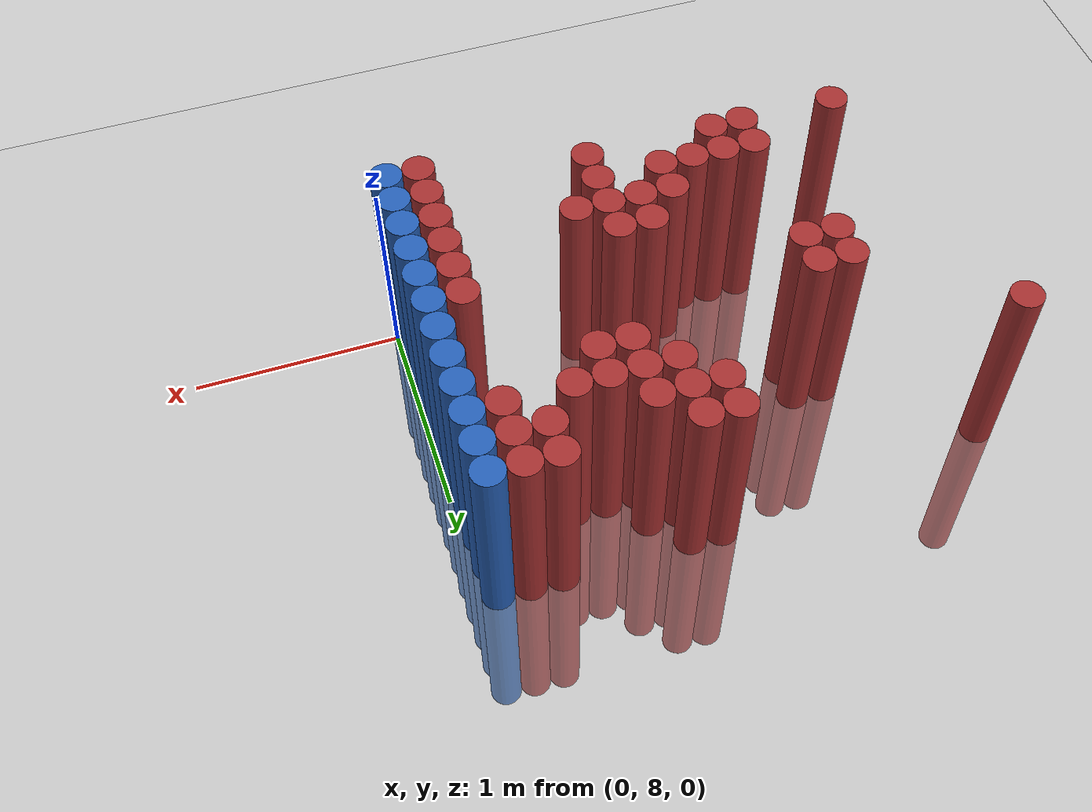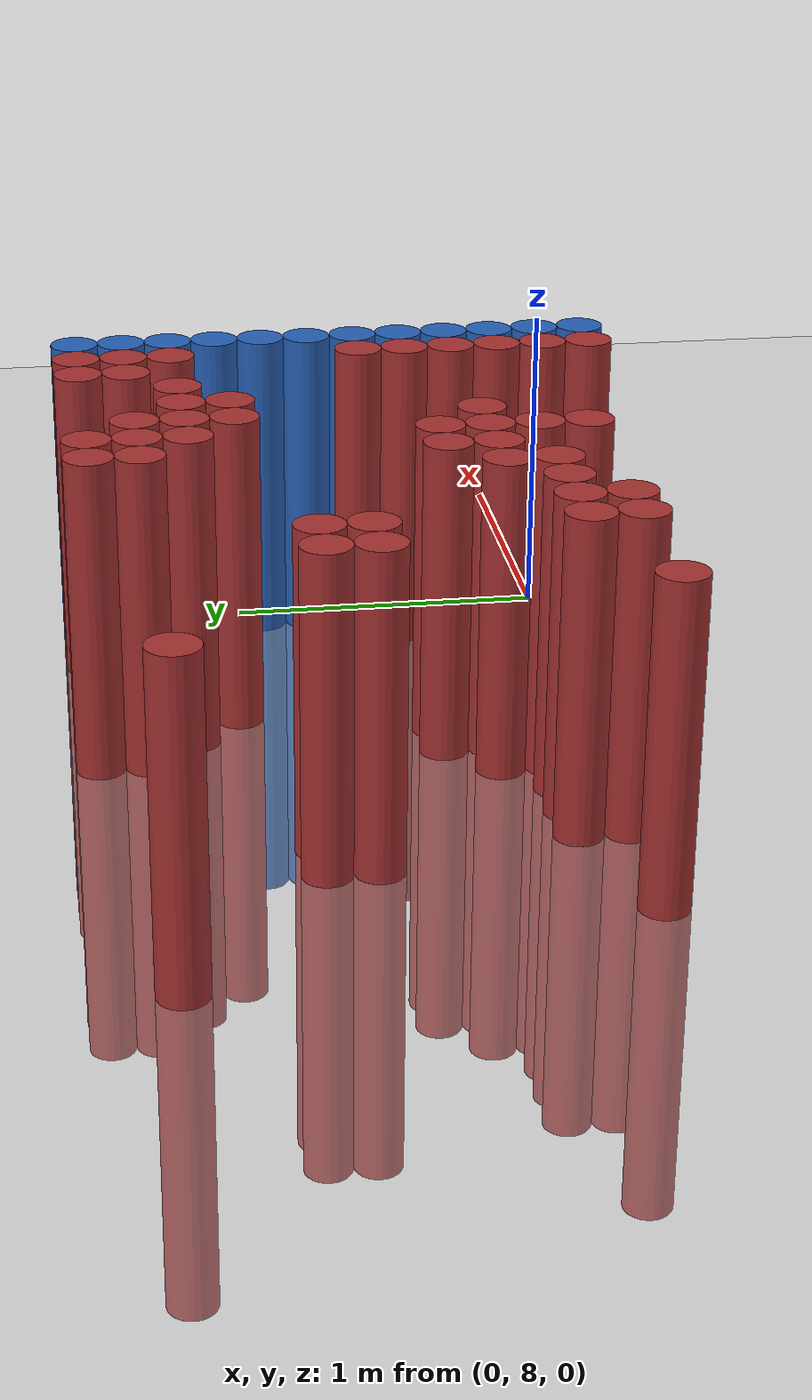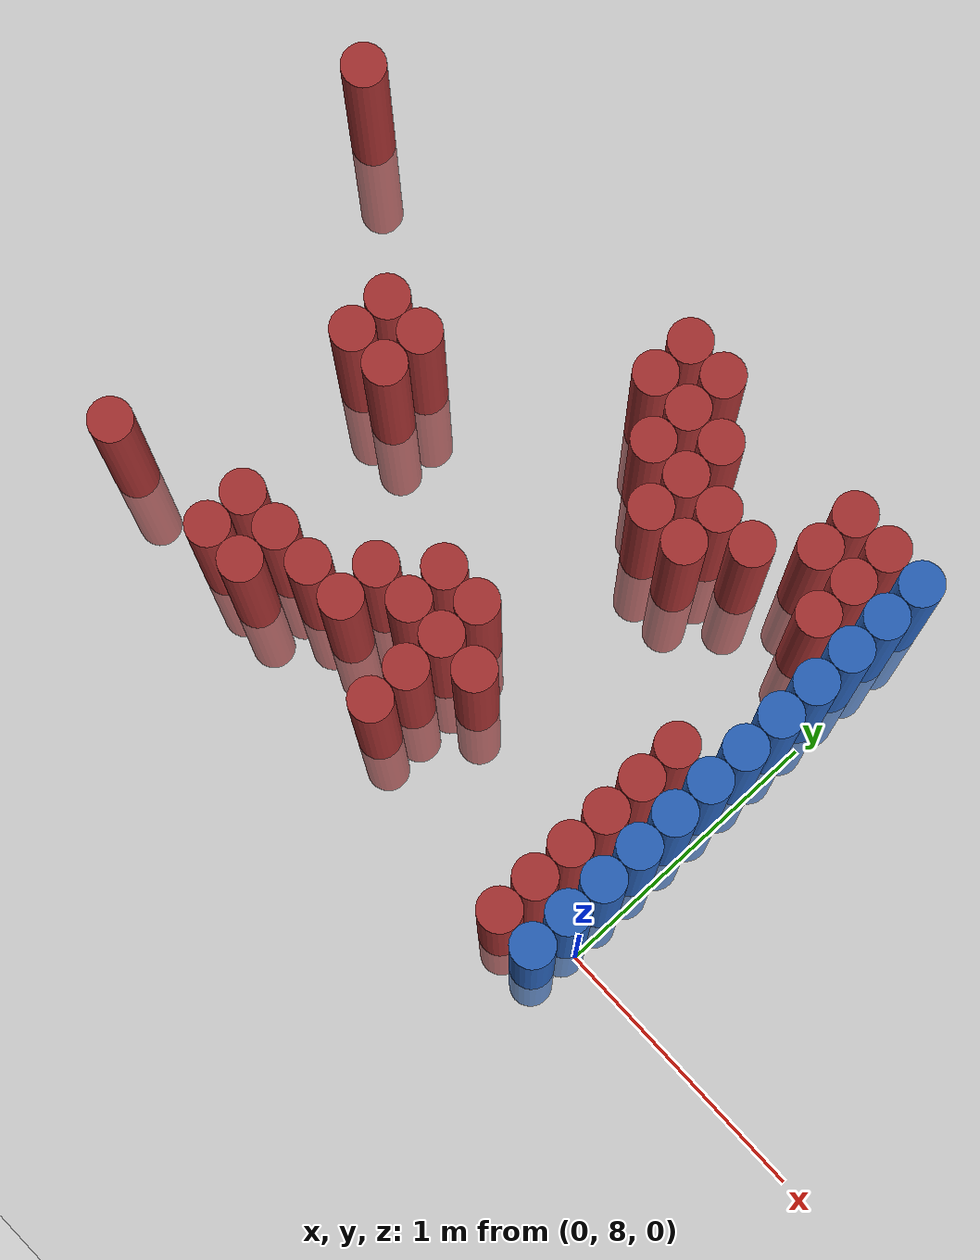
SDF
<sdf version="1.6">
 <world name="default">
  <model name="ground_plane">
   <static>1</static>
   <link name="link">
    <collision name="collision">
     <geometry><plane><normal>0 0 1</normal><size>100 100</size></plane></geometry>
     <surface><friction><ode><mu>100</mu><mu2>50</mu2></ode></friction></surface>
    </collision>
    <visual name="visual">
     <cast_shadows>0</cast_shadows>
     <geometry><plane><normal>0 0 1</normal><size>100 100</size></plane></geometry>
     <material>
      <script><uri>file://media/materials/scripts/gazebo.material</uri><name>Gazebo/Grey</name></script>
     </material>
    </visual>
   </link>
  </model>
  <model name="unit_cylinder_177">
   <static>1</static>
   <pose>-2.475000 9.375000 0.000000 0.000000 0.000000 0.000000</pose>
   <link name="link">
    <inertial>
     <mass>1</mass>
     <inertia><ixx>0.145833</ixx><ixy>0</ixy><ixz>0</ixz><iyy>0.145833</iyy><iyz>0</iyz><izz>0.125</izz></inertia>
    </inertial>
    <collision name="collision">
     <geometry><cylinder><radius>0.075000</radius><length>2</length></cylinder></geometry>
    </collision>
    <visual name="visual">
     <geometry><cylinder><radius>0.075000</radius><length>2</length></cylinder></geometry>
     <material>
      <ambient>0.648000 0.192000 0.192000 1</ambient>
      <diffuse>0.648000 0.192000 0.192000 1</diffuse>
     </material>
     <material>
      <script><name>Gazebo/Grey</name><uri>file://media/materials/scripts/gazebo.material</uri></script>
     </material>
    </visual>
   </link>
  </model>
  <model name="unit_cylinder_188">
   <static>1</static>
   <pose>-2.175000 8.025000 0.000000 0.000000 0.000000 0.000000</pose>
   <link name="link">
    <inertial>
     <mass>1</mass>
     <inertia><ixx>0.145833</ixx><ixy>0</ixy><ixz>0</ixz><iyy>0.145833</iyy><iyz>0</iyz><izz>0.125</izz></inertia>
    </inertial>
    <collision name="collision">
     <geometry><cylinder><radius>0.075000</radius><length>2</length></cylinder></geometry>
    </collision>
    <visual name="visual">
     <geometry><cylinder><radius>0.075000</radius><length>2</length></cylinder></geometry>
     <material>
      <ambient>0.648000 0.192000 0.192000 1</ambient>
      <diffuse>0.648000 0.192000 0.192000 1</diffuse>
     </material>
     <material>
      <script><name>Gazebo/Grey</name><uri>file://media/materials/scripts/gazebo.material</uri></script>
     </material>
    </visual>
   </link>
  </model>
  <model name="unit_cylinder_198">
   <static>1</static>
   <pose>-1.875000 8.775000 0.000000 0.000000 0.000000 0.000000</pose>
   <link name="link">
    <inertial>
     <mass>1</mass>
     <inertia><ixx>0.145833</ixx><ixy>0</ixy><ixz>0</ixz><iyy>0.145833</iyy><iyz>0</iyz><izz>0.125</izz></inertia>
    </inertial>
    <collision name="collision">
     <geometry><cylinder><radius>0.075000</radius><length>2</length></cylinder></geometry>
    </collision>
    <visual name="visual">
     <geometry><cylinder><radius>0.075000</radius><length>2</length></cylinder></geometry>
     <material>
      <ambient>0.648000 0.192000 0.192000 1</ambient>
      <diffuse>0.648000 0.192000 0.192000 1</diffuse>
     </material>
     <material>
      <script><name>Gazebo/Grey</name><uri>file://media/materials/scripts/gazebo.material</uri></script>
     </material>
    </visual>
   </link>
  </model>
  <model name="unit_cylinder_199">
   <static>1</static>
   <pose>-1.875000 8.925000 0.000000 0.000000 0.000000 0.000000</pose>
   <link name="link">
    <inertial>
     <mass>1</mass>
     <inertia><ixx>0.145833</ixx><ixy>0</ixy><ixz>0</ixz><iyy>0.145833</iyy><iyz>0</iyz><izz>0.125</izz></inertia>
    </inertial>
    <collision name="collision">
     <geometry><cylinder><radius>0.075000</radius><length>2</length></cylinder></geometry>
    </collision>
    <visual name="visual">
     <geometry><cylinder><radius>0.075000</radius><length>2</length></cylinder></geometry>
     <material>
      <ambient>0.648000 0.192000 0.192000 1</ambient>
      <diffuse>0.648000 0.192000 0.192000 1</diffuse>
     </material>
     <material>
      <script><name>Gazebo/Grey</name><uri>file://media/materials/scripts/gazebo.material</uri></script>
     </material>
    </visual>
   </link>
  </model>
  <model name="unit_cylinder_208">
   <static>1</static>
   <pose>-1.725000 8.025000 0.000000 0.000000 0.000000 0.000000</pose>
   <link name="link">
    <inertial>
     <mass>1</mass>
     <inertia><ixx>0.145833</ixx><ixy>0</ixy><ixz>0</ixz><iyy>0.145833</iyy><iyz>0</iyz><izz>0.125</izz></inertia>
    </inertial>
    <collision name="collision">
     <geometry><cylinder><radius>0.075000</radius><length>2</length></cylinder></geometry>
    </collision>
    <visual name="visual">
     <geometry><cylinder><radius>0.075000</radius><length>2</length></cylinder></geometry>
     <material>
      <ambient>0.648000 0.192000 0.192000 1</ambient>
      <diffuse>0.648000 0.192000 0.192000 1</diffuse>
     </material>
     <material>
      <script><name>Gazebo/Grey</name><uri>file://media/materials/scripts/gazebo.material</uri></script>
     </material>
    </visual>
   </link>
  </model>
  <model name="unit_cylinder_209">
   <static>1</static>
   <pose>-1.725000 8.175000 0.000000 0.000000 0.000000 0.000000</pose>
   <link name="link">
    <inertial>
     <mass>1</mass>
     <inertia><ixx>0.145833</ixx><ixy>0</ixy><ixz>0</ixz><iyy>0.145833</iyy><iyz>0</iyz><izz>0.125</izz></inertia>
    </inertial>
    <collision name="collision">
     <geometry><cylinder><radius>0.075000</radius><length>2</length></cylinder></geometry>
    </collision>
    <visual name="visual">
     <geometry><cylinder><radius>0.075000</radius><length>2</length></cylinder></geometry>
     <material>
      <ambient>0.648000 0.192000 0.192000 1</ambient>
      <diffuse>0.648000 0.192000 0.192000 1</diffuse>
     </material>
     <material>
      <script><name>Gazebo/Grey</name><uri>file://media/materials/scripts/gazebo.material</uri></script>
     </material>
    </visual>
   </link>
  </model>
  <model name="unit_cylinder_210">
   <static>1</static>
   <pose>-1.725000 8.775000 0.000000 0.000000 0.000000 0.000000</pose>
   <link name="link">
    <inertial>
     <mass>1</mass>
     <inertia><ixx>0.145833</ixx><ixy>0</ixy><ixz>0</ixz><iyy>0.145833</iyy><iyz>0</iyz><izz>0.125</izz></inertia>
    </inertial>
    <collision name="collision">
     <geometry><cylinder><radius>0.075000</radius><length>2</length></cylinder></geometry>
    </collision>
    <visual name="visual">
     <geometry><cylinder><radius>0.075000</radius><length>2</length></cylinder></geometry>
     <material>
      <ambient>0.648000 0.192000 0.192000 1</ambient>
      <diffuse>0.648000 0.192000 0.192000 1</diffuse>
     </material>
     <material>
      <script><name>Gazebo/Grey</name><uri>file://media/materials/scripts/gazebo.material</uri></script>
     </material>
    </visual>
   </link>
  </model>
  <model name="unit_cylinder_211">
   <static>1</static>
   <pose>-1.725000 8.925000 0.000000 0.000000 0.000000 0.000000</pose>
   <link name="link">
    <inertial>
     <mass>1</mass>
     <inertia><ixx>0.145833</ixx><ixy>0</ixy><ixz>0</ixz><iyy>0.145833</iyy><iyz>0</iyz><izz>0.125</izz></inertia>
    </inertial>
    <collision name="collision">
     <geometry><cylinder><radius>0.075000</radius><length>2</length></cylinder></geometry>
    </collision>
    <visual name="visual">
     <geometry><cylinder><radius>0.075000</radius><length>2</length></cylinder></geometry>
     <material>
      <ambient>0.648000 0.192000 0.192000 1</ambient>
      <diffuse>0.648000 0.192000 0.192000 1</diffuse>
     </material>
     <material>
      <script><name>Gazebo/Grey</name><uri>file://media/materials/scripts/gazebo.material</uri></script>
     </material>
    </visual>
   </link>
  </model>
  <model name="unit_cylinder_221">
   <static>1</static>
   <pose>-1.575000 8.025000 0.000000 0.000000 0.000000 0.000000</pose>
   <link name="link">
    <inertial>
     <mass>1</mass>
     <inertia><ixx>0.145833</ixx><ixy>0</ixy><ixz>0</ixz><iyy>0.145833</iyy><iyz>0</iyz><izz>0.125</izz></inertia>
    </inertial>
    <collision name="collision">
     <geometry><cylinder><radius>0.075000</radius><length>2</length></cylinder></geometry>
    </collision>
    <visual name="visual">
     <geometry><cylinder><radius>0.075000</radius><length>2</length></cylinder></geometry>
     <material>
      <ambient>0.648000 0.192000 0.192000 1</ambient>
      <diffuse>0.648000 0.192000 0.192000 1</diffuse>
     </material>
     <material>
      <script><name>Gazebo/Grey</name><uri>file://media/materials/scripts/gazebo.material</uri></script>
     </material>
    </visual>
   </link>
  </model>
  <model name="unit_cylinder_222">
   <static>1</static>
   <pose>-1.575000 8.175000 0.000000 0.000000 0.000000 0.000000</pose>
   <link name="link">
    <inertial>
     <mass>1</mass>
     <inertia><ixx>0.145833</ixx><ixy>0</ixy><ixz>0</ixz><iyy>0.145833</iyy><iyz>0</iyz><izz>0.125</izz></inertia>
    </inertial>
    <collision name="collision">
     <geometry><cylinder><radius>0.075000</radius><length>2</length></cylinder></geometry>
    </collision>
    <visual name="visual">
     <geometry><cylinder><radius>0.075000</radius><length>2</length></cylinder></geometry>
     <material>
      <ambient>0.648000 0.192000 0.192000 1</ambient>
      <diffuse>0.648000 0.192000 0.192000 1</diffuse>
     </material>
     <material>
      <script><name>Gazebo/Grey</name><uri>file://media/materials/scripts/gazebo.material</uri></script>
     </material>
    </visual>
   </link>
  </model>
  <model name="unit_cylinder_227">
   <static>1</static>
   <pose>-1.425000 8.175000 0.000000 0.000000 0.000000 0.000000</pose>
   <link name="link">
    <inertial>
     <mass>1</mass>
     <inertia><ixx>0.145833</ixx><ixy>0</ixy><ixz>0</ixz><iyy>0.145833</iyy><iyz>0</iyz><izz>0.125</izz></inertia>
    </inertial>
    <collision name="collision">
     <geometry><cylinder><radius>0.075000</radius><length>2</length></cylinder></geometry>
    </collision>
    <visual name="visual">
     <geometry><cylinder><radius>0.075000</radius><length>2</length></cylinder></geometry>
     <material>
      <ambient>0.648000 0.192000 0.192000 1</ambient>
      <diffuse>0.648000 0.192000 0.192000 1</diffuse>
     </material>
     <material>
      <script><name>Gazebo/Grey</name><uri>file://media/materials/scripts/gazebo.material</uri></script>
     </material>
    </visual>
   </link>
  </model>
  <model name="unit_cylinder_231">
   <static>1</static>
   <pose>-1.275000 8.175000 0.000000 0.000000 0.000000 0.000000</pose>
   <link name="link">
    <inertial>
     <mass>1</mass>
     <inertia><ixx>0.145833</ixx><ixy>0</ixy><ixz>0</ixz><iyy>0.145833</iyy><iyz>0</iyz><izz>0.125</izz></inertia>
    </inertial>
    <collision name="collision">
     <geometry><cylinder><radius>0.075000</radius><length>2</length></cylinder></geometry>
    </collision>
    <visual name="visual">
     <geometry><cylinder><radius>0.075000</radius><length>2</length></cylinder></geometry>
     <material>
      <ambient>0.648000 0.192000 0.192000 1</ambient>
      <diffuse>0.648000 0.192000 0.192000 1</diffuse>
     </material>
     <material>
      <script><name>Gazebo/Grey</name><uri>file://media/materials/scripts/gazebo.material</uri></script>
     </material>
    </visual>
   </link>
  </model>
  <model name="unit_cylinder_232">
   <static>1</static>
   <pose>-1.275000 8.325000 0.000000 0.000000 0.000000 0.000000</pose>
   <link name="link">
    <inertial>
     <mass>1</mass>
     <inertia><ixx>0.145833</ixx><ixy>0</ixy><ixz>0</ixz><iyy>0.145833</iyy><iyz>0</iyz><izz>0.125</izz></inertia>
    </inertial>
    <collision name="collision">
     <geometry><cylinder><radius>0.075000</radius><length>2</length></cylinder></geometry>
    </collision>
    <visual name="visual">
     <geometry><cylinder><radius>0.075000</radius><length>2</length></cylinder></geometry>
     <material>
      <ambient>0.648000 0.192000 0.192000 1</ambient>
      <diffuse>0.648000 0.192000 0.192000 1</diffuse>
     </material>
     <material>
      <script><name>Gazebo/Grey</name><uri>file://media/materials/scripts/gazebo.material</uri></script>
     </material>
    </visual>
   </link>
  </model>
  <model name="unit_cylinder_238">
   <static>1</static>
   <pose>-1.125000 8.325000 0.000000 0.000000 0.000000 0.000000</pose>
   <link name="link">
    <inertial>
     <mass>1</mass>
     <inertia><ixx>0.145833</ixx><ixy>0</ixy><ixz>0</ixz><iyy>0.145833</iyy><iyz>0</iyz><izz>0.125</izz></inertia>
    </inertial>
    <collision name="collision">
     <geometry><cylinder><radius>0.075000</radius><length>2</length></cylinder></geometry>
    </collision>
    <visual name="visual">
     <geometry><cylinder><radius>0.075000</radius><length>2</length></cylinder></geometry>
     <material>
      <ambient>0.648000 0.192000 0.192000 1</ambient>
      <diffuse>0.648000 0.192000 0.192000 1</diffuse>
     </material>
     <material>
      <script><name>Gazebo/Grey</name><uri>file://media/materials/scripts/gazebo.material</uri></script>
     </material>
    </visual>
   </link>
  </model>
  <model name="unit_cylinder_239">
   <static>1</static>
   <pose>-1.125000 8.475000 0.000000 0.000000 0.000000 0.000000</pose>
   <link name="link">
    <inertial>
     <mass>1</mass>
     <inertia><ixx>0.145833</ixx><ixy>0</ixy><ixz>0</ixz><iyy>0.145833</iyy><iyz>0</iyz><izz>0.125</izz></inertia>
    </inertial>
    <collision name="collision">
     <geometry><cylinder><radius>0.075000</radius><length>2</length></cylinder></geometry>
    </collision>
    <visual name="visual">
     <geometry><cylinder><radius>0.075000</radius><length>2</length></cylinder></geometry>
     <material>
      <ambient>0.648000 0.192000 0.192000 1</ambient>
      <diffuse>0.648000 0.192000 0.192000 1</diffuse>
     </material>
     <material>
      <script><name>Gazebo/Grey</name><uri>file://media/materials/scripts/gazebo.material</uri></script>
     </material>
    </visual>
   </link>
  </model>
  <model name="unit_cylinder_240">
   <static>1</static>
   <pose>-1.125000 9.375000 0.000000 0.000000 0.000000 0.000000</pose>
   <link name="link">
    <inertial>
     <mass>1</mass>
     <inertia><ixx>0.145833</ixx><ixy>0</ixy><ixz>0</ixz><iyy>0.145833</iyy><iyz>0</iyz><izz>0.125</izz></inertia>
    </inertial>
    <collision name="collision">
     <geometry><cylinder><radius>0.075000</radius><length>2</length></cylinder></geometry>
    </collision>
    <visual name="visual">
     <geometry><cylinder><radius>0.075000</radius><length>2</length></cylinder></geometry>
     <material>
      <ambient>0.648000 0.192000 0.192000 1</ambient>
      <diffuse>0.648000 0.192000 0.192000 1</diffuse>
     </material>
     <material>
      <script><name>Gazebo/Grey</name><uri>file://media/materials/scripts/gazebo.material</uri></script>
     </material>
    </visual>
   </link>
  </model>
  <model name="unit_cylinder_241">
   <static>1</static>
   <pose>-1.125000 9.525000 0.000000 0.000000 0.000000 0.000000</pose>
   <link name="link">
    <inertial>
     <mass>1</mass>
     <inertia><ixx>0.145833</ixx><ixy>0</ixy><ixz>0</ixz><iyy>0.145833</iyy><iyz>0</iyz><izz>0.125</izz></inertia>
    </inertial>
    <collision name="collision">
     <geometry><cylinder><radius>0.075000</radius><length>2</length></cylinder></geometry>
    </collision>
    <visual name="visual">
     <geometry><cylinder><radius>0.075000</radius><length>2</length></cylinder></geometry>
     <material>
      <ambient>0.648000 0.192000 0.192000 1</ambient>
      <diffuse>0.648000 0.192000 0.192000 1</diffuse>
     </material>
     <material>
      <script><name>Gazebo/Grey</name><uri>file://media/materials/scripts/gazebo.material</uri></script>
     </material>
    </visual>
   </link>
  </model>
  <model name="unit_cylinder_246">
   <static>1</static>
   <pose>-0.975000 8.025000 0.000000 0.000000 0.000000 0.000000</pose>
   <link name="link">
    <inertial>
     <mass>1</mass>
     <inertia><ixx>0.145833</ixx><ixy>0</ixy><ixz>0</ixz><iyy>0.145833</iyy><iyz>0</iyz><izz>0.125</izz></inertia>
    </inertial>
    <collision name="collision">
     <geometry><cylinder><radius>0.075000</radius><length>2</length></cylinder></geometry>
    </collision>
    <visual name="visual">
     <geometry><cylinder><radius>0.075000</radius><length>2</length></cylinder></geometry>
     <material>
      <ambient>0.648000 0.192000 0.192000 1</ambient>
      <diffuse>0.648000 0.192000 0.192000 1</diffuse>
     </material>
     <material>
      <script><name>Gazebo/Grey</name><uri>file://media/materials/scripts/gazebo.material</uri></script>
     </material>
    </visual>
   </link>
  </model>
  <model name="unit_cylinder_247">
   <static>1</static>
   <pose>-0.975000 8.175000 0.000000 0.000000 0.000000 0.000000</pose>
   <link name="link">
    <inertial>
     <mass>1</mass>
     <inertia><ixx>0.145833</ixx><ixy>0</ixy><ixz>0</ixz><iyy>0.145833</iyy><iyz>0</iyz><izz>0.125</izz></inertia>
    </inertial>
    <collision name="collision">
     <geometry><cylinder><radius>0.075000</radius><length>2</length></cylinder></geometry>
    </collision>
    <visual name="visual">
     <geometry><cylinder><radius>0.075000</radius><length>2</length></cylinder></geometry>
     <material>
      <ambient>0.648000 0.192000 0.192000 1</ambient>
      <diffuse>0.648000 0.192000 0.192000 1</diffuse>
     </material>
     <material>
      <script><name>Gazebo/Grey</name><uri>file://media/materials/scripts/gazebo.material</uri></script>
     </material>
    </visual>
   </link>
  </model>
  <model name="unit_cylinder_248">
   <static>1</static>
   <pose>-0.975000 8.325000 0.000000 0.000000 0.000000 0.000000</pose>
   <link name="link">
    <inertial>
     <mass>1</mass>
     <inertia><ixx>0.145833</ixx><ixy>0</ixy><ixz>0</ixz><iyy>0.145833</iyy><iyz>0</iyz><izz>0.125</izz></inertia>
    </inertial>
    <collision name="collision">
     <geometry><cylinder><radius>0.075000</radius><length>2</length></cylinder></geometry>
    </collision>
    <visual name="visual">
     <geometry><cylinder><radius>0.075000</radius><length>2</length></cylinder></geometry>
     <material>
      <ambient>0.648000 0.192000 0.192000 1</ambient>
      <diffuse>0.648000 0.192000 0.192000 1</diffuse>
     </material>
     <material>
      <script><name>Gazebo/Grey</name><uri>file://media/materials/scripts/gazebo.material</uri></script>
     </material>
    </visual>
   </link>
  </model>
  <model name="unit_cylinder_249">
   <static>1</static>
   <pose>-0.975000 8.475000 0.000000 0.000000 0.000000 0.000000</pose>
   <link name="link">
    <inertial>
     <mass>1</mass>
     <inertia><ixx>0.145833</ixx><ixy>0</ixy><ixz>0</ixz><iyy>0.145833</iyy><iyz>0</iyz><izz>0.125</izz></inertia>
    </inertial>
    <collision name="collision">
     <geometry><cylinder><radius>0.075000</radius><length>2</length></cylinder></geometry>
    </collision>
    <visual name="visual">
     <geometry><cylinder><radius>0.075000</radius><length>2</length></cylinder></geometry>
     <material>
      <ambient>0.648000 0.192000 0.192000 1</ambient>
      <diffuse>0.648000 0.192000 0.192000 1</diffuse>
     </material>
     <material>
      <script><name>Gazebo/Grey</name><uri>file://media/materials/scripts/gazebo.material</uri></script>
     </material>
    </visual>
   </link>
  </model>
  <model name="unit_cylinder_250">
   <static>1</static>
   <pose>-0.975000 9.225000 0.000000 0.000000 0.000000 0.000000</pose>
   <link name="link">
    <inertial>
     <mass>1</mass>
     <inertia><ixx>0.145833</ixx><ixy>0</ixy><ixz>0</ixz><iyy>0.145833</iyy><iyz>0</iyz><izz>0.125</izz></inertia>
    </inertial>
    <collision name="collision">
     <geometry><cylinder><radius>0.075000</radius><length>2</length></cylinder></geometry>
    </collision>
    <visual name="visual">
     <geometry><cylinder><radius>0.075000</radius><length>2</length></cylinder></geometry>
     <material>
      <ambient>0.648000 0.192000 0.192000 1</ambient>
      <diffuse>0.648000 0.192000 0.192000 1</diffuse>
     </material>
     <material>
      <script><name>Gazebo/Grey</name><uri>file://media/materials/scripts/gazebo.material</uri></script>
     </material>
    </visual>
   </link>
  </model>
  <model name="unit_cylinder_251">
   <static>1</static>
   <pose>-0.975000 9.375000 0.000000 0.000000 0.000000 0.000000</pose>
   <link name="link">
    <inertial>
     <mass>1</mass>
     <inertia><ixx>0.145833</ixx><ixy>0</ixy><ixz>0</ixz><iyy>0.145833</iyy><iyz>0</iyz><izz>0.125</izz></inertia>
    </inertial>
    <collision name="collision">
     <geometry><cylinder><radius>0.075000</radius><length>2</length></cylinder></geometry>
    </collision>
    <visual name="visual">
     <geometry><cylinder><radius>0.075000</radius><length>2</length></cylinder></geometry>
     <material>
      <ambient>0.648000 0.192000 0.192000 1</ambient>
      <diffuse>0.648000 0.192000 0.192000 1</diffuse>
     </material>
     <material>
      <script><name>Gazebo/Grey</name><uri>file://media/materials/scripts/gazebo.material</uri></script>
     </material>
    </visual>
   </link>
  </model>
  <model name="unit_cylinder_252">
   <static>1</static>
   <pose>-0.975000 9.525000 0.000000 0.000000 0.000000 0.000000</pose>
   <link name="link">
    <inertial>
     <mass>1</mass>
     <inertia><ixx>0.145833</ixx><ixy>0</ixy><ixz>0</ixz><iyy>0.145833</iyy><iyz>0</iyz><izz>0.125</izz></inertia>
    </inertial>
    <collision name="collision">
     <geometry><cylinder><radius>0.075000</radius><length>2</length></cylinder></geometry>
    </collision>
    <visual name="visual">
     <geometry><cylinder><radius>0.075000</radius><length>2</length></cylinder></geometry>
     <material>
      <ambient>0.648000 0.192000 0.192000 1</ambient>
      <diffuse>0.648000 0.192000 0.192000 1</diffuse>
     </material>
     <material>
      <script><name>Gazebo/Grey</name><uri>file://media/materials/scripts/gazebo.material</uri></script>
     </material>
    </visual>
   </link>
  </model>
  <model name="unit_cylinder_256">
   <static>1</static>
   <pose>-0.825000 8.325000 0.000000 0.000000 0.000000 0.000000</pose>
   <link name="link">
    <inertial>
     <mass>1</mass>
     <inertia><ixx>0.145833</ixx><ixy>0</ixy><ixz>0</ixz><iyy>0.145833</iyy><iyz>0</iyz><izz>0.125</izz></inertia>
    </inertial>
    <collision name="collision">
     <geometry><cylinder><radius>0.075000</radius><length>2</length></cylinder></geometry>
    </collision>
    <visual name="visual">
     <geometry><cylinder><radius>0.075000</radius><length>2</length></cylinder></geometry>
     <material>
      <ambient>0.648000 0.192000 0.192000 1</ambient>
      <diffuse>0.648000 0.192000 0.192000 1</diffuse>
     </material>
     <material>
      <script><name>Gazebo/Grey</name><uri>file://media/materials/scripts/gazebo.material</uri></script>
     </material>
    </visual>
   </link>
  </model>
  <model name="unit_cylinder_257">
   <static>1</static>
   <pose>-0.825000 9.075000 0.000000 0.000000 0.000000 0.000000</pose>
   <link name="link">
    <inertial>
     <mass>1</mass>
     <inertia><ixx>0.145833</ixx><ixy>0</ixy><ixz>0</ixz><iyy>0.145833</iyy><iyz>0</iyz><izz>0.125</izz></inertia>
    </inertial>
    <collision name="collision">
     <geometry><cylinder><radius>0.075000</radius><length>2</length></cylinder></geometry>
    </collision>
    <visual name="visual">
     <geometry><cylinder><radius>0.075000</radius><length>2</length></cylinder></geometry>
     <material>
      <ambient>0.648000 0.192000 0.192000 1</ambient>
      <diffuse>0.648000 0.192000 0.192000 1</diffuse>
     </material>
     <material>
      <script><name>Gazebo/Grey</name><uri>file://media/materials/scripts/gazebo.material</uri></script>
     </material>
    </visual>
   </link>
  </model>
  <model name="unit_cylinder_258">
   <static>1</static>
   <pose>-0.825000 9.225000 0.000000 0.000000 0.000000 0.000000</pose>
   <link name="link">
    <inertial>
     <mass>1</mass>
     <inertia><ixx>0.145833</ixx><ixy>0</ixy><ixz>0</ixz><iyy>0.145833</iyy><iyz>0</iyz><izz>0.125</izz></inertia>
    </inertial>
    <collision name="collision">
     <geometry><cylinder><radius>0.075000</radius><length>2</length></cylinder></geometry>
    </collision>
    <visual name="visual">
     <geometry><cylinder><radius>0.075000</radius><length>2</length></cylinder></geometry>
     <material>
      <ambient>0.648000 0.192000 0.192000 1</ambient>
      <diffuse>0.648000 0.192000 0.192000 1</diffuse>
     </material>
     <material>
      <script><name>Gazebo/Grey</name><uri>file://media/materials/scripts/gazebo.material</uri></script>
     </material>
    </visual>
   </link>
  </model>
  <model name="unit_cylinder_259">
   <static>1</static>
   <pose>-0.825000 9.375000 0.000000 0.000000 0.000000 0.000000</pose>
   <link name="link">
    <inertial>
     <mass>1</mass>
     <inertia><ixx>0.145833</ixx><ixy>0</ixy><ixz>0</ixz><iyy>0.145833</iyy><iyz>0</iyz><izz>0.125</izz></inertia>
    </inertial>
    <collision name="collision">
     <geometry><cylinder><radius>0.075000</radius><length>2</length></cylinder></geometry>
    </collision>
    <visual name="visual">
     <geometry><cylinder><radius>0.075000</radius><length>2</length></cylinder></geometry>
     <material>
      <ambient>0.648000 0.192000 0.192000 1</ambient>
      <diffuse>0.648000 0.192000 0.192000 1</diffuse>
     </material>
     <material>
      <script><name>Gazebo/Grey</name><uri>file://media/materials/scripts/gazebo.material</uri></script>
     </material>
    </visual>
   </link>
  </model>
  <model name="unit_cylinder_263">
   <static>1</static>
   <pose>-0.675000 9.075000 0.000000 0.000000 0.000000 0.000000</pose>
   <link name="link">
    <inertial>
     <mass>1</mass>
     <inertia><ixx>0.145833</ixx><ixy>0</ixy><ixz>0</ixz><iyy>0.145833</iyy><iyz>0</iyz><izz>0.125</izz></inertia>
    </inertial>
    <collision name="collision">
     <geometry><cylinder><radius>0.075000</radius><length>2</length></cylinder></geometry>
    </collision>
    <visual name="visual">
     <geometry><cylinder><radius>0.075000</radius><length>2</length></cylinder></geometry>
     <material>
      <ambient>0.648000 0.192000 0.192000 1</ambient>
      <diffuse>0.648000 0.192000 0.192000 1</diffuse>
     </material>
     <material>
      <script><name>Gazebo/Grey</name><uri>file://media/materials/scripts/gazebo.material</uri></script>
     </material>
    </visual>
   </link>
  </model>
  <model name="unit_cylinder_264">
   <static>1</static>
   <pose>-0.675000 9.225000 0.000000 0.000000 0.000000 0.000000</pose>
   <link name="link">
    <inertial>
     <mass>1</mass>
     <inertia><ixx>0.145833</ixx><ixy>0</ixy><ixz>0</ixz><iyy>0.145833</iyy><iyz>0</iyz><izz>0.125</izz></inertia>
    </inertial>
    <collision name="collision">
     <geometry><cylinder><radius>0.075000</radius><length>2</length></cylinder></geometry>
    </collision>
    <visual name="visual">
     <geometry><cylinder><radius>0.075000</radius><length>2</length></cylinder></geometry>
     <material>
      <ambient>0.648000 0.192000 0.192000 1</ambient>
      <diffuse>0.648000 0.192000 0.192000 1</diffuse>
     </material>
     <material>
      <script><name>Gazebo/Grey</name><uri>file://media/materials/scripts/gazebo.material</uri></script>
     </material>
    </visual>
   </link>
  </model>
  <model name="unit_cylinder_268">
   <static>1</static>
   <pose>-0.525000 9.225000 0.000000 0.000000 0.000000 0.000000</pose>
   <link name="link">
    <inertial>
     <mass>1</mass>
     <inertia><ixx>0.145833</ixx><ixy>0</ixy><ixz>0</ixz><iyy>0.145833</iyy><iyz>0</iyz><izz>0.125</izz></inertia>
    </inertial>
    <collision name="collision">
     <geometry><cylinder><radius>0.075000</radius><length>2</length></cylinder></geometry>
    </collision>
    <visual name="visual">
     <geometry><cylinder><radius>0.075000</radius><length>2</length></cylinder></geometry>
     <material>
      <ambient>0.648000 0.192000 0.192000 1</ambient>
      <diffuse>0.648000 0.192000 0.192000 1</diffuse>
     </material>
     <material>
      <script><name>Gazebo/Grey</name><uri>file://media/materials/scripts/gazebo.material</uri></script>
     </material>
    </visual>
   </link>
  </model>
  <model name="unit_cylinder_275">
   <static>1</static>
   <pose>-0.375000 9.375000 0.000000 0.000000 0.000000 0.000000</pose>
   <link name="link">
    <inertial>
     <mass>1</mass>
     <inertia><ixx>0.145833</ixx><ixy>0</ixy><ixz>0</ixz><iyy>0.145833</iyy><iyz>0</iyz><izz>0.125</izz></inertia>
    </inertial>
    <collision name="collision">
     <geometry><cylinder><radius>0.075000</radius><length>2</length></cylinder></geometry>
    </collision>
    <visual name="visual">
     <geometry><cylinder><radius>0.075000</radius><length>2</length></cylinder></geometry>
     <material>
      <ambient>0.648000 0.192000 0.192000 1</ambient>
      <diffuse>0.648000 0.192000 0.192000 1</diffuse>
     </material>
     <material>
      <script><name>Gazebo/Grey</name><uri>file://media/materials/scripts/gazebo.material</uri></script>
     </material>
    </visual>
   </link>
  </model>
  <model name="unit_cylinder_276">
   <static>1</static>
   <pose>-0.375000 9.525000 0.000000 0.000000 0.000000 0.000000</pose>
   <link name="link">
    <inertial>
     <mass>1</mass>
     <inertia><ixx>0.145833</ixx><ixy>0</ixy><ixz>0</ixz><iyy>0.145833</iyy><iyz>0</iyz><izz>0.125</izz></inertia>
    </inertial>
    <collision name="collision">
     <geometry><cylinder><radius>0.075000</radius><length>2</length></cylinder></geometry>
    </collision>
    <visual name="visual">
     <geometry><cylinder><radius>0.075000</radius><length>2</length></cylinder></geometry>
     <material>
      <ambient>0.648000 0.192000 0.192000 1</ambient>
      <diffuse>0.648000 0.192000 0.192000 1</diffuse>
     </material>
     <material>
      <script><name>Gazebo/Grey</name><uri>file://media/materials/scripts/gazebo.material</uri></script>
     </material>
    </visual>
   </link>
  </model>
  <model name="unit_cylinder_286">
   <static>1</static>
   <pose>-0.225000 7.875000 0.000000 0.000000 0.000000 0.000000</pose>
   <link name="link">
    <inertial>
     <mass>1</mass>
     <inertia><ixx>0.145833</ixx><ixy>0</ixy><ixz>0</ixz><iyy>0.145833</iyy><iyz>0</iyz><izz>0.125</izz></inertia>
    </inertial>
    <collision name="collision">
     <geometry><cylinder><radius>0.075000</radius><length>2</length></cylinder></geometry>
    </collision>
    <visual name="visual">
     <geometry><cylinder><radius>0.075000</radius><length>2</length></cylinder></geometry>
     <material>
      <ambient>0.648000 0.192000 0.192000 1</ambient>
      <diffuse>0.648000 0.192000 0.192000 1</diffuse>
     </material>
     <material>
      <script><name>Gazebo/Grey</name><uri>file://media/materials/scripts/gazebo.material</uri></script>
     </material>
    </visual>
   </link>
  </model>
  <model name="unit_cylinder_287">
   <static>1</static>
   <pose>-0.225000 8.025000 0.000000 0.000000 0.000000 0.000000</pose>
   <link name="link">
    <inertial>
     <mass>1</mass>
     <inertia><ixx>0.145833</ixx><ixy>0</ixy><ixz>0</ixz><iyy>0.145833</iyy><iyz>0</iyz><izz>0.125</izz></inertia>
    </inertial>
    <collision name="collision">
     <geometry><cylinder><radius>0.075000</radius><length>2</length></cylinder></geometry>
    </collision>
    <visual name="visual">
     <geometry><cylinder><radius>0.075000</radius><length>2</length></cylinder></geometry>
     <material>
      <ambient>0.648000 0.192000 0.192000 1</ambient>
      <diffuse>0.648000 0.192000 0.192000 1</diffuse>
     </material>
     <material>
      <script><name>Gazebo/Grey</name><uri>file://media/materials/scripts/gazebo.material</uri></script>
     </material>
    </visual>
   </link>
  </model>
  <model name="unit_cylinder_288">
   <static>1</static>
   <pose>-0.225000 8.175000 0.000000 0.000000 0.000000 0.000000</pose>
   <link name="link">
    <inertial>
     <mass>1</mass>
     <inertia><ixx>0.145833</ixx><ixy>0</ixy><ixz>0</ixz><iyy>0.145833</iyy><iyz>0</iyz><izz>0.125</izz></inertia>
    </inertial>
    <collision name="collision">
     <geometry><cylinder><radius>0.075000</radius><length>2</length></cylinder></geometry>
    </collision>
    <visual name="visual">
     <geometry><cylinder><radius>0.075000</radius><length>2</length></cylinder></geometry>
     <material>
      <ambient>0.648000 0.192000 0.192000 1</ambient>
      <diffuse>0.648000 0.192000 0.192000 1</diffuse>
     </material>
     <material>
      <script><name>Gazebo/Grey</name><uri>file://media/materials/scripts/gazebo.material</uri></script>
     </material>
    </visual>
   </link>
  </model>
  <model name="unit_cylinder_289">
   <static>1</static>
   <pose>-0.225000 8.325000 0.000000 0.000000 0.000000 0.000000</pose>
   <link name="link">
    <inertial>
     <mass>1</mass>
     <inertia><ixx>0.145833</ixx><ixy>0</ixy><ixz>0</ixz><iyy>0.145833</iyy><iyz>0</iyz><izz>0.125</izz></inertia>
    </inertial>
    <collision name="collision">
     <geometry><cylinder><radius>0.075000</radius><length>2</length></cylinder></geometry>
    </collision>
    <visual name="visual">
     <geometry><cylinder><radius>0.075000</radius><length>2</length></cylinder></geometry>
     <material>
      <ambient>0.648000 0.192000 0.192000 1</ambient>
      <diffuse>0.648000 0.192000 0.192000 1</diffuse>
     </material>
     <material>
      <script><name>Gazebo/Grey</name><uri>file://media/materials/scripts/gazebo.material</uri></script>
     </material>
    </visual>
   </link>
  </model>
  <model name="unit_cylinder_290">
   <static>1</static>
   <pose>-0.225000 8.475000 0.000000 0.000000 0.000000 0.000000</pose>
   <link name="link">
    <inertial>
     <mass>1</mass>
     <inertia><ixx>0.145833</ixx><ixy>0</ixy><ixz>0</ixz><iyy>0.145833</iyy><iyz>0</iyz><izz>0.125</izz></inertia>
    </inertial>
    <collision name="collision">
     <geometry><cylinder><radius>0.075000</radius><length>2</length></cylinder></geometry>
    </collision>
    <visual name="visual">
     <geometry><cylinder><radius>0.075000</radius><length>2</length></cylinder></geometry>
     <material>
      <ambient>0.648000 0.192000 0.192000 1</ambient>
      <diffuse>0.648000 0.192000 0.192000 1</diffuse>
     </material>
     <material>
      <script><name>Gazebo/Grey</name><uri>file://media/materials/scripts/gazebo.material</uri></script>
     </material>
    </visual>
   </link>
  </model>
  <model name="unit_cylinder_291">
   <static>1</static>
   <pose>-0.225000 8.625000 0.000000 0.000000 0.000000 0.000000</pose>
   <link name="link">
    <inertial>
     <mass>1</mass>
     <inertia><ixx>0.145833</ixx><ixy>0</ixy><ixz>0</ixz><iyy>0.145833</iyy><iyz>0</iyz><izz>0.125</izz></inertia>
    </inertial>
    <collision name="collision">
     <geometry><cylinder><radius>0.075000</radius><length>2</length></cylinder></geometry>
    </collision>
    <visual name="visual">
     <geometry><cylinder><radius>0.075000</radius><length>2</length></cylinder></geometry>
     <material>
      <ambient>0.648000 0.192000 0.192000 1</ambient>
      <diffuse>0.648000 0.192000 0.192000 1</diffuse>
     </material>
     <material>
      <script><name>Gazebo/Grey</name><uri>file://media/materials/scripts/gazebo.material</uri></script>
     </material>
    </visual>
   </link>
  </model>
  <model name="unit_cylinder_292">
   <static>1</static>
   <pose>-0.225000 9.225000 0.000000 0.000000 0.000000 0.000000</pose>
   <link name="link">
    <inertial>
     <mass>1</mass>
     <inertia><ixx>0.145833</ixx><ixy>0</ixy><ixz>0</ixz><iyy>0.145833</iyy><iyz>0</iyz><izz>0.125</izz></inertia>
    </inertial>
    <collision name="collision">
     <geometry><cylinder><radius>0.075000</radius><length>2</length></cylinder></geometry>
    </collision>
    <visual name="visual">
     <geometry><cylinder><radius>0.075000</radius><length>2</length></cylinder></geometry>
     <material>
      <ambient>0.648000 0.192000 0.192000 1</ambient>
      <diffuse>0.648000 0.192000 0.192000 1</diffuse>
     </material>
     <material>
      <script><name>Gazebo/Grey</name><uri>file://media/materials/scripts/gazebo.material</uri></script>
     </material>
    </visual>
   </link>
  </model>
  <model name="unit_cylinder_293">
   <static>1</static>
   <pose>-0.225000 9.375000 0.000000 0.000000 0.000000 0.000000</pose>
   <link name="link">
    <inertial>
     <mass>1</mass>
     <inertia><ixx>0.145833</ixx><ixy>0</ixy><ixz>0</ixz><iyy>0.145833</iyy><iyz>0</iyz><izz>0.125</izz></inertia>
    </inertial>
    <collision name="collision">
     <geometry><cylinder><radius>0.075000</radius><length>2</length></cylinder></geometry>
    </collision>
    <visual name="visual">
     <geometry><cylinder><radius>0.075000</radius><length>2</length></cylinder></geometry>
     <material>
      <ambient>0.648000 0.192000 0.192000 1</ambient>
      <diffuse>0.648000 0.192000 0.192000 1</diffuse>
     </material>
     <material>
      <script><name>Gazebo/Grey</name><uri>file://media/materials/scripts/gazebo.material</uri></script>
     </material>
    </visual>
   </link>
  </model>
  <model name="unit_cylinder_294">
   <static>1</static>
   <pose>-0.225000 9.525000 0.000000 0.000000 0.000000 0.000000</pose>
   <link name="link">
    <inertial>
     <mass>1</mass>
     <inertia><ixx>0.145833</ixx><ixy>0</ixy><ixz>0</ixz><iyy>0.145833</iyy><iyz>0</iyz><izz>0.125</izz></inertia>
    </inertial>
    <collision name="collision">
     <geometry><cylinder><radius>0.075000</radius><length>2</length></cylinder></geometry>
    </collision>
    <visual name="visual">
     <geometry><cylinder><radius>0.075000</radius><length>2</length></cylinder></geometry>
     <material>
      <ambient>0.648000 0.192000 0.192000 1</ambient>
      <diffuse>0.648000 0.192000 0.192000 1</diffuse>
     </material>
     <material>
      <script><name>Gazebo/Grey</name><uri>file://media/materials/scripts/gazebo.material</uri></script>
     </material>
    </visual>
   </link>
  </model>
  <model name="unit_cylinder_313">
   <static>1</static>
   <pose>-0.075000 7.875000 0.000000 0.000000 0.000000 0.000000</pose>
   <link name="link">
    <inertial>
     <mass>1</mass>
     <inertia><ixx>0.145833</ixx><ixy>0</ixy><ixz>0</ixz><iyy>0.145833</iyy><iyz>0</iyz><izz>0.125</izz></inertia>
    </inertial>
    <collision name="collision">
     <geometry><cylinder><radius>0.075000</radius><length>2</length></cylinder></geometry>
    </collision>
    <visual name="visual">
     <geometry><cylinder><radius>0.075000</radius><length>2</length></cylinder></geometry>
     <material>
      <ambient>0.152000 0.379000 0.720000 1</ambient>
      <diffuse>0.152000 0.379000 0.720000 1</diffuse>
     </material>
     <material>
      <script><name>Gazebo/Grey</name><uri>file://media/materials/scripts/gazebo.material</uri></script>
     </material>
    </visual>
   </link>
  </model>
  <model name="unit_cylinder_314">
   <static>1</static>
   <pose>-0.075000 8.025000 0.000000 0.000000 0.000000 0.000000</pose>
   <link name="link">
    <inertial>
     <mass>1</mass>
     <inertia><ixx>0.145833</ixx><ixy>0</ixy><ixz>0</ixz><iyy>0.145833</iyy><iyz>0</iyz><izz>0.125</izz></inertia>
    </inertial>
    <collision name="collision">
     <geometry><cylinder><radius>0.075000</radius><length>2</length></cylinder></geometry>
    </collision>
    <visual name="visual">
     <geometry><cylinder><radius>0.075000</radius><length>2</length></cylinder></geometry>
     <material>
      <ambient>0.152000 0.379000 0.720000 1</ambient>
      <diffuse>0.152000 0.379000 0.720000 1</diffuse>
     </material>
     <material>
      <script><name>Gazebo/Grey</name><uri>file://media/materials/scripts/gazebo.material</uri></script>
     </material>
    </visual>
   </link>
  </model>
  <model name="unit_cylinder_315">
   <static>1</static>
   <pose>-0.075000 8.175000 0.000000 0.000000 0.000000 0.000000</pose>
   <link name="link">
    <inertial>
     <mass>1</mass>
     <inertia><ixx>0.145833</ixx><ixy>0</ixy><ixz>0</ixz><iyy>0.145833</iyy><iyz>0</iyz><izz>0.125</izz></inertia>
    </inertial>
    <collision name="collision">
     <geometry><cylinder><radius>0.075000</radius><length>2</length></cylinder></geometry>
    </collision>
    <visual name="visual">
     <geometry><cylinder><radius>0.075000</radius><length>2</length></cylinder></geometry>
     <material>
      <ambient>0.152000 0.379000 0.720000 1</ambient>
      <diffuse>0.152000 0.379000 0.720000 1</diffuse>
     </material>
     <material>
      <script><name>Gazebo/Grey</name><uri>file://media/materials/scripts/gazebo.material</uri></script>
     </material>
    </visual>
   </link>
  </model>
  <model name="unit_cylinder_316">
   <static>1</static>
   <pose>-0.075000 8.325000 0.000000 0.000000 0.000000 0.000000</pose>
   <link name="link">
    <inertial>
     <mass>1</mass>
     <inertia><ixx>0.145833</ixx><ixy>0</ixy><ixz>0</ixz><iyy>0.145833</iyy><iyz>0</iyz><izz>0.125</izz></inertia>
    </inertial>
    <collision name="collision">
     <geometry><cylinder><radius>0.075000</radius><length>2</length></cylinder></geometry>
    </collision>
    <visual name="visual">
     <geometry><cylinder><radius>0.075000</radius><length>2</length></cylinder></geometry>
     <material>
      <ambient>0.152000 0.379000 0.720000 1</ambient>
      <diffuse>0.152000 0.379000 0.720000 1</diffuse>
     </material>
     <material>
      <script><name>Gazebo/Grey</name><uri>file://media/materials/scripts/gazebo.material</uri></script>
     </material>
    </visual>
   </link>
  </model>
  <model name="unit_cylinder_317">
   <static>1</static>
   <pose>-0.075000 8.475000 0.000000 0.000000 0.000000 0.000000</pose>
   <link name="link">
    <inertial>
     <mass>1</mass>
     <inertia><ixx>0.145833</ixx><ixy>0</ixy><ixz>0</ixz><iyy>0.145833</iyy><iyz>0</iyz><izz>0.125</izz></inertia>
    </inertial>
    <collision name="collision">
     <geometry><cylinder><radius>0.075000</radius><length>2</length></cylinder></geometry>
    </collision>
    <visual name="visual">
     <geometry><cylinder><radius>0.075000</radius><length>2</length></cylinder></geometry>
     <material>
      <ambient>0.152000 0.379000 0.720000 1</ambient>
      <diffuse>0.152000 0.379000 0.720000 1</diffuse>
     </material>
     <material>
      <script><name>Gazebo/Grey</name><uri>file://media/materials/scripts/gazebo.material</uri></script>
     </material>
    </visual>
   </link>
  </model>
  <model name="unit_cylinder_318">
   <static>1</static>
   <pose>-0.075000 8.625000 0.000000 0.000000 0.000000 0.000000</pose>
   <link name="link">
    <inertial>
     <mass>1</mass>
     <inertia><ixx>0.145833</ixx><ixy>0</ixy><ixz>0</ixz><iyy>0.145833</iyy><iyz>0</iyz><izz>0.125</izz></inertia>
    </inertial>
    <collision name="collision">
     <geometry><cylinder><radius>0.075000</radius><length>2</length></cylinder></geometry>
    </collision>
    <visual name="visual">
     <geometry><cylinder><radius>0.075000</radius><length>2</length></cylinder></geometry>
     <material>
      <ambient>0.152000 0.379000 0.720000 1</ambient>
      <diffuse>0.152000 0.379000 0.720000 1</diffuse>
     </material>
     <material>
      <script><name>Gazebo/Grey</name><uri>file://media/materials/scripts/gazebo.material</uri></script>
     </material>
    </visual>
   </link>
  </model>
  <model name="unit_cylinder_319">
   <static>1</static>
   <pose>-0.075000 8.775000 0.000000 0.000000 0.000000 0.000000</pose>
   <link name="link">
    <inertial>
     <mass>1</mass>
     <inertia><ixx>0.145833</ixx><ixy>0</ixy><ixz>0</ixz><iyy>0.145833</iyy><iyz>0</iyz><izz>0.125</izz></inertia>
    </inertial>
    <collision name="collision">
     <geometry><cylinder><radius>0.075000</radius><length>2</length></cylinder></geometry>
    </collision>
    <visual name="visual">
     <geometry><cylinder><radius>0.075000</radius><length>2</length></cylinder></geometry>
     <material>
      <ambient>0.152000 0.379000 0.720000 1</ambient>
      <diffuse>0.152000 0.379000 0.720000 1</diffuse>
     </material>
     <material>
      <script><name>Gazebo/Grey</name><uri>file://media/materials/scripts/gazebo.material</uri></script>
     </material>
    </visual>
   </link>
  </model>
  <model name="unit_cylinder_320">
   <static>1</static>
   <pose>-0.075000 8.925000 0.000000 0.000000 0.000000 0.000000</pose>
   <link name="link">
    <inertial>
     <mass>1</mass>
     <inertia><ixx>0.145833</ixx><ixy>0</ixy><ixz>0</ixz><iyy>0.145833</iyy><iyz>0</iyz><izz>0.125</izz></inertia>
    </inertial>
    <collision name="collision">
     <geometry><cylinder><radius>0.075000</radius><length>2</length></cylinder></geometry>
    </collision>
    <visual name="visual">
     <geometry><cylinder><radius>0.075000</radius><length>2</length></cylinder></geometry>
     <material>
      <ambient>0.152000 0.379000 0.720000 1</ambient>
      <diffuse>0.152000 0.379000 0.720000 1</diffuse>
     </material>
     <material>
      <script><name>Gazebo/Grey</name><uri>file://media/materials/scripts/gazebo.material</uri></script>
     </material>
    </visual>
   </link>
  </model>
  <model name="unit_cylinder_321">
   <static>1</static>
   <pose>-0.075000 9.075000 0.000000 0.000000 0.000000 0.000000</pose>
   <link name="link">
    <inertial>
     <mass>1</mass>
     <inertia><ixx>0.145833</ixx><ixy>0</ixy><ixz>0</ixz><iyy>0.145833</iyy><iyz>0</iyz><izz>0.125</izz></inertia>
    </inertial>
    <collision name="collision">
     <geometry><cylinder><radius>0.075000</radius><length>2</length></cylinder></geometry>
    </collision>
    <visual name="visual">
     <geometry><cylinder><radius>0.075000</radius><length>2</length></cylinder></geometry>
     <material>
      <ambient>0.152000 0.379000 0.720000 1</ambient>
      <diffuse>0.152000 0.379000 0.720000 1</diffuse>
     </material>
     <material>
      <script><name>Gazebo/Grey</name><uri>file://media/materials/scripts/gazebo.material</uri></script>
     </material>
    </visual>
   </link>
  </model>
  <model name="unit_cylinder_322">
   <static>1</static>
   <pose>-0.075000 9.225000 0.000000 0.000000 0.000000 0.000000</pose>
   <link name="link">
    <inertial>
     <mass>1</mass>
     <inertia><ixx>0.145833</ixx><ixy>0</ixy><ixz>0</ixz><iyy>0.145833</iyy><iyz>0</iyz><izz>0.125</izz></inertia>
    </inertial>
    <collision name="collision">
     <geometry><cylinder><radius>0.075000</radius><length>2</length></cylinder></geometry>
    </collision>
    <visual name="visual">
     <geometry><cylinder><radius>0.075000</radius><length>2</length></cylinder></geometry>
     <material>
      <ambient>0.152000 0.379000 0.720000 1</ambient>
      <diffuse>0.152000 0.379000 0.720000 1</diffuse>
     </material>
     <material>
      <script><name>Gazebo/Grey</name><uri>file://media/materials/scripts/gazebo.material</uri></script>
     </material>
    </visual>
   </link>
  </model>
  <model name="unit_cylinder_323">
   <static>1</static>
   <pose>-0.075000 9.375000 0.000000 0.000000 0.000000 0.000000</pose>
   <link name="link">
    <inertial>
     <mass>1</mass>
     <inertia><ixx>0.145833</ixx><ixy>0</ixy><ixz>0</ixz><iyy>0.145833</iyy><iyz>0</iyz><izz>0.125</izz></inertia>
    </inertial>
    <collision name="collision">
     <geometry><cylinder><radius>0.075000</radius><length>2</length></cylinder></geometry>
    </collision>
    <visual name="visual">
     <geometry><cylinder><radius>0.075000</radius><length>2</length></cylinder></geometry>
     <material>
      <ambient>0.152000 0.379000 0.720000 1</ambient>
      <diffuse>0.152000 0.379000 0.720000 1</diffuse>
     </material>
     <material>
      <script><name>Gazebo/Grey</name><uri>file://media/materials/scripts/gazebo.material</uri></script>
     </material>
    </visual>
   </link>
  </model>
  <model name="unit_cylinder_324">
   <static>1</static>
   <pose>-0.075000 9.525000 0.000000 0.000000 0.000000 0.000000</pose>
   <link name="link">
    <inertial>
     <mass>1</mass>
     <inertia><ixx>0.145833</ixx><ixy>0</ixy><ixz>0</ixz><iyy>0.145833</iyy><iyz>0</iyz><izz>0.125</izz></inertia>
    </inertial>
    <collision name="collision">
     <geometry><cylinder><radius>0.075000</radius><length>2</length></cylinder></geometry>
    </collision>
    <visual name="visual">
     <geometry><cylinder><radius>0.075000</radius><length>2</length></cylinder></geometry>
     <material>
      <ambient>0.152000 0.379000 0.720000 1</ambient>
      <diffuse>0.152000 0.379000 0.720000 1</diffuse>
     </material>
     <material>
      <script><name>Gazebo/Grey</name><uri>file://media/materials/scripts/gazebo.material</uri></script>
     </material>
    </visual>
   </link>
  </model>
 </world>
</sdf>
